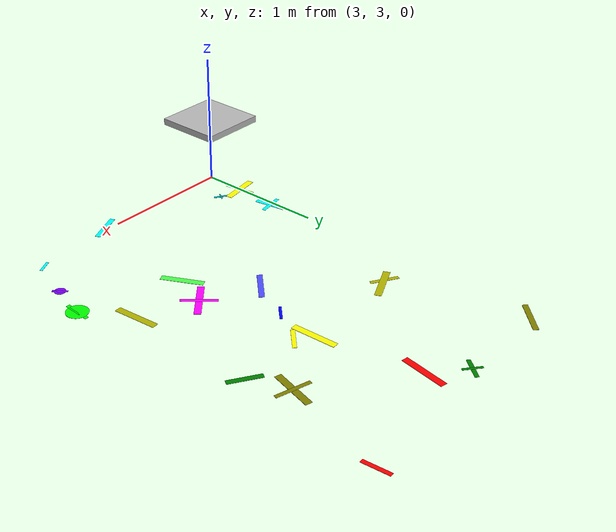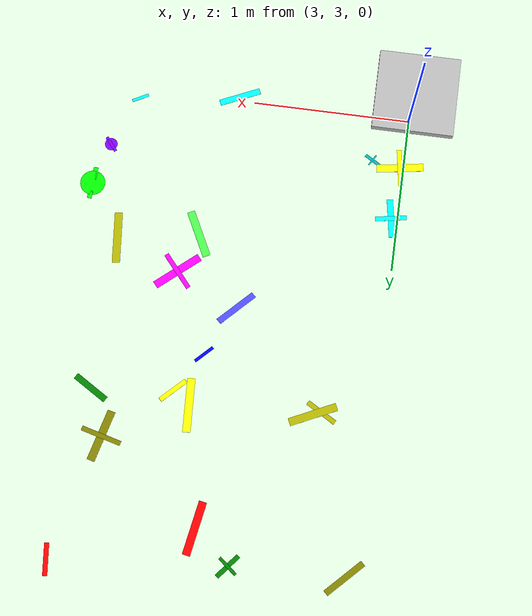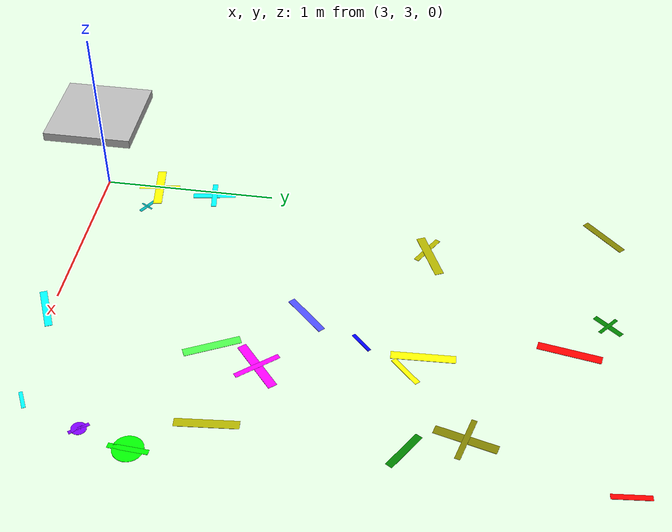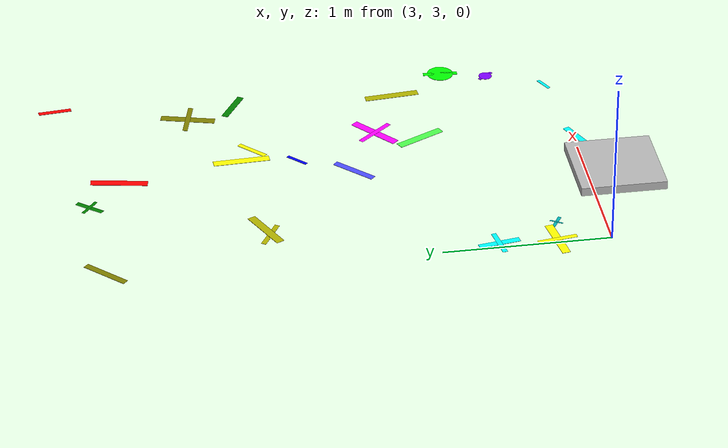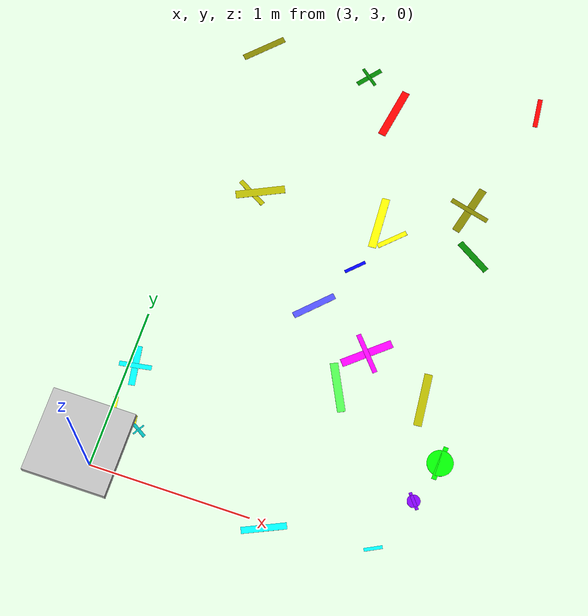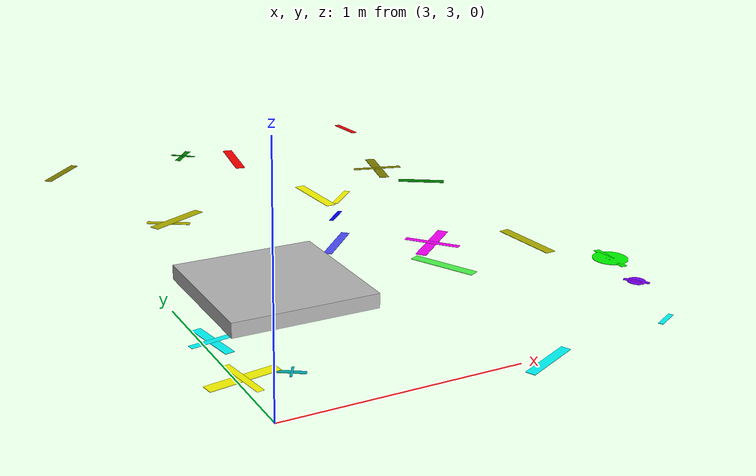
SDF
<sdf version="1.6">
 <world name="default">
  <model name="height_marker_1">
   <static>true</static>
   <pose>3 3 0.5 0 0 0</pose>
   <link name="link">
    <visual name="visual">
     <geometry><box><size>0.5 0.5 0.05</size></box></geometry>
     <material>
      <script><uri>file://media/materials/scripts/gazebo.material</uri><name>Gazebo/Checkerboard</name></script>
     </material>
    </visual>
   </link>
  </model>
  <model name="letter_H_1354">
   <static>true</static>
   <pose>3.20 3.29 0.011 0 0 5.741</pose>
   <link name="link">
    <visual name="visual">
     <geometry><box><size>0.11 0.02 0.002</size></box></geometry>
     <material>
      <ambient>0.0 0.7 0.7 1</ambient>
      <diffuse>0.0 0.7 0.7 1</diffuse>
      <specular>0.1 0.1 0.1 1</specular>
     </material>
    </visual>
    <visual name="visual2">
     <pose>0 0 0.001 0 0 1.57</pose>
     <geometry><box><size>0.08 0.01 0.001</size></box></geometry>
     <material><ambient>0.0 0.7 0.7 1</ambient><diffuse>0.0 0.7 0.7 1</diffuse></material>
    </visual>
   </link>
  </model>
  <model name="letter_F_1355">
   <static>true</static>
   <pose>3.02 3.32 0.013 0 0 0.154</pose>
   <link name="link">
    <visual name="visual">
     <geometry><box><size>0.30 0.05 0.002</size></box></geometry>
     <material>
      <ambient>1.0 1.0 0.0 1</ambient>
      <diffuse>1.0 1.0 0.0 1</diffuse>
      <specular>0.1 0.1 0.1 1</specular>
     </material>
    </visual>
    <visual name="visual2">
     <pose>0 0 0.001 0 0 1.57</pose>
     <geometry><box><size>0.24 0.03 0.001</size></box></geometry>
     <material><ambient>1.0 1.0 0.0 1</ambient><diffuse>1.0 1.0 0.0 1</diffuse></material>
    </visual>
   </link>
  </model>
  <model name="letter_I_1357">
   <static>true</static>
   <pose>3.04 3.66 0.007 0 0 1.737</pose>
   <link name="link">
    <visual name="visual">
     <geometry><box><size>0.25 0.04 0.002</size></box></geometry>
     <material>
      <ambient>0.0 1.0 1.0 1</ambient>
      <diffuse>0.0 1.0 1.0 1</diffuse>
      <specular>0.1 0.1 0.1 1</specular>
     </material>
    </visual>
    <visual name="visual2">
     <pose>0 0 0.001 0 0 1.57</pose>
     <geometry><box><size>0.20 0.03 0.001</size></box></geometry>
     <material><ambient>0.0 1.0 1.0 1</ambient><diffuse>0.0 1.0 1.0 1</diffuse></material>
    </visual>
   </link>
  </model>
  <model name="letter_K_1358">
   <static>true</static>
   <pose>3.33 4.96 0.008 0 0 2.614</pose>
   <link name="link">
    <visual name="visual">
     <geometry><box><size>0.21 0.03 0.002</size></box></geometry>
     <material>
      <ambient>0.7 0.7 0.0 1</ambient>
      <diffuse>0.7 0.7 0.0 1</diffuse>
      <specular>0.1 0.1 0.1 1</specular>
     </material>
    </visual>
   </link>
  </model>
  <model name="letter_X_1359">
   <static>true</static>
   <pose>3.38 4.98 0.012 0 0 0.445</pose>
   <link name="link">
    <visual name="visual">
     <geometry><box><size>0.31 0.05 0.002</size></box></geometry>
     <material>
      <ambient>0.7 0.7 0.0 1</ambient>
      <diffuse>0.7 0.7 0.0 1</diffuse>
      <specular>0.1 0.1 0.1 1</specular>
     </material>
    </visual>
   </link>
  </model>
  <model name="letter_N_1361">
   <static>true</static>
   <pose>3.07 5.95 0.009 0 0 0.793</pose>
   <link name="link">
    <visual name="visual">
     <geometry><box><size>0.29 0.04 0.002</size></box></geometry>
     <material>
      <ambient>0.5 0.5 0.0 1</ambient>
      <diffuse>0.5 0.5 0.0 1</diffuse>
      <specular>0.1 0.1 0.1 1</specular>
     </material>
    </visual>
   </link>
  </model>
  <model name="letter_N_1430">
   <static>true</static>
   <pose>4.10 2.97 0.003 0 0 0.428</pose>
   <link name="link">
    <visual name="visual">
     <geometry><box><size>0.27 0.04 0.002</size></box></geometry>
     <material>
      <ambient>0.0 1.0 1.0 1</ambient>
      <diffuse>0.0 1.0 1.0 1</diffuse>
      <specular>0.1 0.1 0.1 1</specular>
     </material>
    </visual>
   </link>
  </model>
  <model name="letter_M_1431">
   <static>true</static>
   <pose>4.24 3.92 0.008 0 0 2.035</pose>
   <link name="link">
    <visual name="visual">
     <geometry><box><size>0.31 0.05 0.002</size></box></geometry>
     <material>
      <ambient>0.3 1.0 0.3 1</ambient>
      <diffuse>0.3 1.0 0.3 1</diffuse>
      <specular>0.1 0.1 0.1 1</specular>
     </material>
    </visual>
   </link>
  </model>
  <model name="letter_T_1432">
   <static>true</static>
   <pose>4.34 4.18 0.007 0 0 0.706</pose>
   <link name="link">
    <visual name="visual">
     <geometry><box><size>0.33 0.05 0.002</size></box></geometry>
     <material>
      <ambient>1.0 0.0 1.0 1</ambient>
      <diffuse>1.0 0.0 1.0 1</diffuse>
      <specular>0.1 0.1 0.1 1</specular>
     </material>
    </visual>
    <visual name="visual2">
     <pose>0 0 0.001 0 0 1.57</pose>
     <geometry><box><size>0.26 0.03 0.001</size></box></geometry>
     <material><ambient>1.0 0.0 1.0 1</ambient><diffuse>1.0 0.0 1.0 1</diffuse></material>
    </visual>
   </link>
  </model>
  <model name="letter_S_1433">
   <static>true</static>
   <pose>3.94 4.37 0.007 0 0 0.792</pose>
   <link name="link">
    <visual name="visual">
     <geometry><box><size>0.28 0.04 0.002</size></box></geometry>
     <material>
      <ambient>0.3 0.3 1.0 1</ambient>
      <diffuse>0.3 0.3 1.0 1</diffuse>
      <specular>0.1 0.1 0.1 1</specular>
     </material>
    </visual>
   </link>
  </model>
  <model name="letter_D_1434">
   <static>true</static>
   <pose>4.10 4.69 0.011 0 0 0.784</pose>
   <link name="link">
    <visual name="visual">
     <geometry><box><size>0.14 0.02 0.002</size></box></geometry>
     <material>
      <ambient>0.0 0.0 1.0 1</ambient>
      <diffuse>0.0 0.0 1.0 1</diffuse>
      <specular>0.1 0.1 0.1 1</specular>
     </material>
    </visual>
   </link>
  </model>
  <model name="letter_B_1435">
   <static>true</static>
   <pose>4.15 5.02 0.006 0 0 4.757</pose>
   <link name="link">
    <visual name="visual">
     <geometry><box><size>0.34 0.05 0.002</size></box></geometry>
     <material>
      <ambient>1.0 1.0 0.0 1</ambient>
      <diffuse>1.0 1.0 0.0 1</diffuse>
      <specular>0.1 0.1 0.1 1</specular>
     </material>
    </visual>
   </link>
  </model>
  <model name="letter_W_1436">
   <static>true</static>
   <pose>4.26 4.94 0.006 0 0 0.775</pose>
   <link name="link">
    <visual name="visual">
     <geometry><box><size>0.20 0.03 0.002</size></box></geometry>
     <material>
      <ambient>1.0 1.0 0.0 1</ambient>
      <diffuse>1.0 1.0 0.0 1</diffuse>
      <specular>0.1 0.1 0.1 1</specular>
     </material>
    </visual>
   </link>
  </model>
  <model name="letter_I_1437">
   <static>true</static>
   <pose>3.78 5.97 0.006 0 0 0.888</pose>
   <link name="link">
    <visual name="visual">
     <geometry><box><size>0.18 0.03 0.002</size></box></geometry>
     <material>
      <ambient>0.0 0.5 0.0 1</ambient>
      <diffuse>0.0 0.5 0.0 1</diffuse>
      <specular>0.1 0.1 0.1 1</specular>
     </material>
    </visual>
    <visual name="visual2">
     <pose>0 0 0.001 0 0 1.57</pose>
     <geometry><box><size>0.14 0.02 0.001</size></box></geometry>
     <material><ambient>0.0 0.5 0.0 1</ambient><diffuse>0.0 0.5 0.0 1</diffuse></material>
    </visual>
   </link>
  </model>
  <model name="letter_X_1438">
   <static>true</static>
   <pose>4.01 5.77 0.012 0 0 1.397</pose>
   <link name="link">
    <visual name="visual">
     <geometry><box><size>0.34 0.05 0.002</size></box></geometry>
     <material>
      <ambient>1.0 0.0 0.0 1</ambient>
      <diffuse>1.0 0.0 0.0 1</diffuse>
      <specular>0.1 0.1 0.1 1</specular>
     </material>
    </visual>
   </link>
  </model>
  <model name="letter_O_1503">
   <static>true</static>
   <pose>4.88 3.40 0.012 0 0 5.392</pose>
   <link name="link">
    <visual name="visual">
     <geometry><box><size>0.11 0.02 0.002</size></box></geometry>
     <material>
      <ambient>0.5 0.0 1.0 1</ambient>
      <diffuse>0.5 0.0 1.0 1</diffuse>
      <specular>0.1 0.1 0.1 1</specular>
     </material>
    </visual>
    <visual name="visual2">
     <geometry><cylinder><radius>0.04</radius><length>0.002</length></cylinder></geometry>
     <material><ambient>0.5 0.0 1.0 1</ambient><diffuse>0.5 0.0 1.0 1</diffuse></material>
    </visual>
   </link>
  </model>
  <model name="letter_D_1504">
   <static>true</static>
   <pose>4.74 3.06 0.004 0 0 3.618</pose>
   <link name="link">
    <visual name="visual">
     <geometry><box><size>0.11 0.02 0.002</size></box></geometry>
     <material>
      <ambient>0.0 1.0 1.0 1</ambient>
      <diffuse>0.0 1.0 1.0 1</diffuse>
      <specular>0.1 0.1 0.1 1</specular>
     </material>
    </visual>
   </link>
  </model>
  <model name="letter_N_1506">
   <static>true</static>
   <pose>4.75 4.01 0.005 0 0 4.803</pose>
   <link name="link">
    <visual name="visual">
     <geometry><box><size>0.33 0.05 0.002</size></box></geometry>
     <material>
      <ambient>0.7 0.7 0.0 1</ambient>
      <diffuse>0.7 0.7 0.0 1</diffuse>
      <specular>0.1 0.1 0.1 1</specular>
     </material>
    </visual>
   </link>
  </model>
  <model name="letter_Q_1507">
   <static>true</static>
   <pose>4.96 3.67 0.005 0 0 1.504</pose>
   <link name="link">
    <visual name="visual">
     <geometry><box><size>0.21 0.03 0.002</size></box></geometry>
     <material>
      <ambient>0.0 1.0 0.0 1</ambient>
      <diffuse>0.0 1.0 0.0 1</diffuse>
      <specular>0.1 0.1 0.1 1</specular>
     </material>
    </visual>
    <visual name="visual2">
     <geometry><cylinder><radius>0.08</radius><length>0.002</length></cylinder></geometry>
     <material><ambient>0.0 1.0 0.0 1</ambient><diffuse>0.0 1.0 0.0 1</diffuse></material>
    </visual>
   </link>
  </model>
  <model name="letter_Y_1508">
   <static>true</static>
   <pose>4.77 4.99 0.005 0 0 5.729</pose>
   <link name="link">
    <visual name="visual">
     <geometry><box><size>0.24 0.04 0.002</size></box></geometry>
     <material>
      <ambient>0.0 0.5 0.0 1</ambient>
      <diffuse>0.0 0.5 0.0 1</diffuse>
      <specular>0.1 0.1 0.1 1</specular>
     </material>
    </visual>
   </link>
  </model>
  <model name="letter_A_1509">
   <static>true</static>
   <pose>4.66 5.28 0.009 0 0 1.314</pose>
   <link name="link">
    <visual name="visual">
     <geometry><box><size>0.33 0.05 0.002</size></box></geometry>
     <material>
      <ambient>0.5 0.5 0.0 1</ambient>
      <diffuse>0.5 0.5 0.0 1</diffuse>
      <specular>0.1 0.1 0.1 1</specular>
     </material>
    </visual>
    <visual name="visual2">
     <pose>0 0 0.001 0 0 1.57</pose>
     <geometry><box><size>0.26 0.03 0.001</size></box></geometry>
     <material><ambient>0.5 0.5 0.0 1</ambient><diffuse>0.5 0.5 0.0 1</diffuse></material>
    </visual>
   </link>
  </model>
  <model name="letter_S_1512">
   <static>true</static>
   <pose>4.88 6.07 0.004 0 0 1.667</pose>
   <link name="link">
    <visual name="visual">
     <geometry><box><size>0.20 0.03 0.002</size></box></geometry>
     <material>
      <ambient>1.0 0.0 0.0 1</ambient>
      <diffuse>1.0 0.0 0.0 1</diffuse>
      <specular>0.1 0.1 0.1 1</specular>
     </material>
    </visual>
   </link>
  </model>
 </world>
</sdf>
